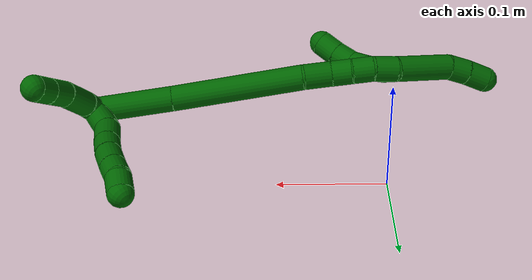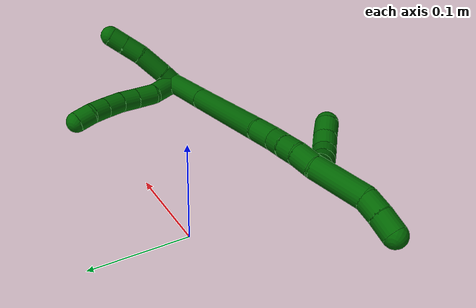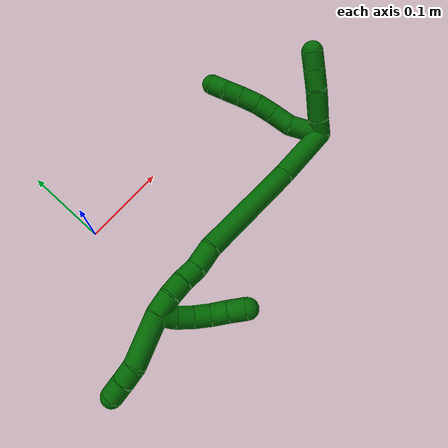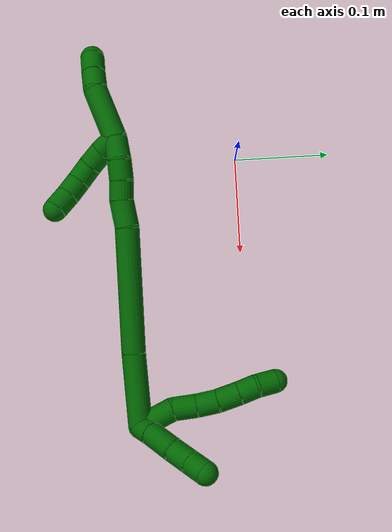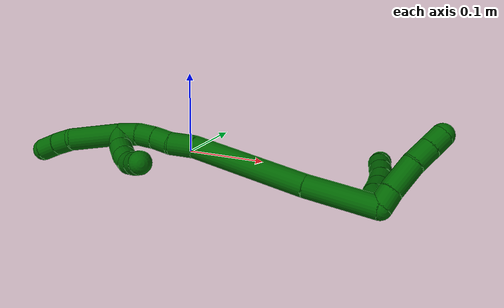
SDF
<sdf version="1.7">
 <world name="default">
  <model name="6">
   <static>0</static>
   <link name="6">
    <collision name="collision-cylinder-e_1_2_8">
     <pose>0.005248 -0.002999 0.018213 0.163201 0.276987 0.022798</pose>
     <geometry><cylinder><radius>0.0125</radius><length>0.038379</length></cylinder></geometry>
     <surface>
      <friction><ode><mu>1.16</mu><mu2>1.16</mu2><slip1>0</slip1><slip2>0</slip2></ode></friction>
      <contact><ode><kp>1e+06</kp><kd>1</kd><max_vel>0</max_vel><min_depth>0.001</min_depth></ode></contact>
     </surface>
    </collision>
    <visual name="visual-cylinder-e_1_2_8">
     <pose>0.005248 -0.002999 0.018213 0.163201 0.276987 0.022798</pose>
     <geometry><cylinder><radius>0.0125</radius><length>0.038379</length></cylinder></geometry>
     <material><ambient>0 0.392157 0.003922 1</ambient></material>
    </visual>
    <collision name="collision-cylinder-e_2_8_9">
     <pose>0.017736 -0.006997 0.046713 0.096802 0.611102 0.030556</pose>
     <geometry><cylinder><radius>0.0125</radius><length>0.025238</length></cylinder></geometry>
     <surface>
      <friction><ode><mu>1.16</mu><mu2>1.16</mu2><slip1>0</slip1><slip2>0</slip2></ode></friction>
      <contact><ode><kp>1e+06</kp><kd>1</kd><max_vel>0</max_vel><min_depth>0.001</min_depth></ode></contact>
     </surface>
    </collision>
    <visual name="visual-cylinder-e_2_8_9">
     <pose>0.017736 -0.006997 0.046713 0.096802 0.611102 0.030556</pose>
     <geometry><cylinder><radius>0.0125</radius><length>0.025238</length></cylinder></geometry>
     <material><ambient>0 0.392157 0.003922 1</ambient></material>
    </visual>
    <collision name="collision-cylinder-e_3_9_10">
     <pose>0.030881 -0.009789 0.066398 0.18853 0.55293 0.053638</pose>
     <geometry><cylinder><radius>0.0125</radius><length>0.022487</length></cylinder></geometry>
     <surface>
      <friction><ode><mu>1.16</mu><mu2>1.16</mu2><slip1>0</slip1><slip2>0</slip2></ode></friction>
      <contact><ode><kp>1e+06</kp><kd>1</kd><max_vel>0</max_vel><min_depth>0.001</min_depth></ode></contact>
     </surface>
    </collision>
    <visual name="visual-cylinder-e_3_9_10">
     <pose>0.030881 -0.009789 0.066398 0.18853 0.55293 0.053638</pose>
     <geometry><cylinder><radius>0.0125</radius><length>0.022487</length></cylinder></geometry>
     <material><ambient>0 0.392157 0.003922 1</ambient></material>
    </visual>
    <collision name="collision-cylinder-e_4_10_11">
     <pose>0.041611 -0.013437 0.08634 0.174178 0.423449 0.037529</pose>
     <geometry><cylinder><radius>0.0125</radius><length>0.023484</length></cylinder></geometry>
     <surface>
      <friction><ode><mu>1.16</mu><mu2>1.16</mu2><slip1>0</slip1><slip2>0</slip2></ode></friction>
      <contact><ode><kp>1e+06</kp><kd>1</kd><max_vel>0</max_vel><min_depth>0.001</min_depth></ode></contact>
     </surface>
    </collision>
    <visual name="visual-cylinder-e_4_10_11">
     <pose>0.041611 -0.013437 0.08634 0.174178 0.423449 0.037529</pose>
     <geometry><cylinder><radius>0.0125</radius><length>0.023484</length></cylinder></geometry>
     <material><ambient>0 0.392157 0.003922 1</ambient></material>
    </visual>
    <collision name="collision-cylinder-e_5_11_12">
     <pose>0.050158 -0.016963 0.106098 0.17927 0.37835 0.034413</pose>
     <geometry><cylinder><radius>0.0125</radius><length>0.020156</length></cylinder></geometry>
     <surface>
      <friction><ode><mu>1.16</mu><mu2>1.16</mu2><slip1>0</slip1><slip2>0</slip2></ode></friction>
      <contact><ode><kp>1e+06</kp><kd>1</kd><max_vel>0</max_vel><min_depth>0.001</min_depth></ode></contact>
     </surface>
    </collision>
    <visual name="visual-cylinder-e_5_11_12">
     <pose>0.050158 -0.016963 0.106098 0.17927 0.37835 0.034413</pose>
     <geometry><cylinder><radius>0.0125</radius><length>0.020156</length></cylinder></geometry>
     <material><ambient>0 0.392157 0.003922 1</ambient></material>
    </visual>
    <collision name="collision-cylinder-e_6_12_6">
     <pose>0.058195 -0.017599 0.124417 -0.113076 0.440066 -0.025316</pose>
     <geometry><cylinder><radius>0.0125</radius><length>0.020255</length></cylinder></geometry>
     <surface>
      <friction><ode><mu>1.16</mu><mu2>1.16</mu2><slip1>0</slip1><slip2>0</slip2></ode></friction>
      <contact><ode><kp>1e+06</kp><kd>1</kd><max_vel>0</max_vel><min_depth>0.001</min_depth></ode></contact>
     </surface>
    </collision>
    <visual name="visual-cylinder-e_6_12_6">
     <pose>0.058195 -0.017599 0.124417 -0.113076 0.440066 -0.025316</pose>
     <geometry><cylinder><radius>0.0125</radius><length>0.020255</length></cylinder></geometry>
     <material><ambient>0 0.392157 0.003922 1</ambient></material>
    </visual>
    <collision name="collision-cylinder-e_1_2_13">
     <pose>0.008324 -0.005817 0.001057 1.39098 0.953226 0.813751</pose>
     <geometry><cylinder><radius>0.0125</radius><length>0.020419</length></cylinder></geometry>
     <surface>
      <friction><ode><mu>1.16</mu><mu2>1.16</mu2><slip1>0</slip1><slip2>0</slip2></ode></friction>
      <contact><ode><kp>1e+06</kp><kd>1</kd><max_vel>0</max_vel><min_depth>0.001</min_depth></ode></contact>
     </surface>
    </collision>
    <visual name="visual-cylinder-e_1_2_13">
     <pose>0.008324 -0.005817 0.001057 1.39098 0.953226 0.813751</pose>
     <geometry><cylinder><radius>0.0125</radius><length>0.020419</length></cylinder></geometry>
     <material><ambient>0 0.392157 0.003922 1</ambient></material>
    </visual>
    <collision name="collision-cylinder-e_2_13_14">
     <pose>0.032194 -0.020464 0.003433 1.42257 1.04949 0.925466</pose>
     <geometry><cylinder><radius>0.0125</radius><length>0.035856</length></cylinder></geometry>
     <surface>
      <friction><ode><mu>1.16</mu><mu2>1.16</mu2><slip1>0</slip1><slip2>0</slip2></ode></friction>
      <contact><ode><kp>1e+06</kp><kd>1</kd><max_vel>0</max_vel><min_depth>0.001</min_depth></ode></contact>
     </surface>
    </collision>
    <visual name="visual-cylinder-e_2_13_14">
     <pose>0.032194 -0.020464 0.003433 1.42257 1.04949 0.925466</pose>
     <geometry><cylinder><radius>0.0125</radius><length>0.035856</length></cylinder></geometry>
     <material><ambient>0 0.392157 0.003922 1</ambient></material>
    </visual>
    <collision name="collision-cylinder-e_3_14_15">
     <pose>0.058692 -0.033555 0.006311 1.21989 1.17805 0.873673</pose>
     <geometry><cylinder><radius>0.0125</radius><length>0.023707</length></cylinder></geometry>
     <surface>
      <friction><ode><mu>1.16</mu><mu2>1.16</mu2><slip1>0</slip1><slip2>0</slip2></ode></friction>
      <contact><ode><kp>1e+06</kp><kd>1</kd><max_vel>0</max_vel><min_depth>0.001</min_depth></ode></contact>
     </surface>
    </collision>
    <visual name="visual-cylinder-e_3_14_15">
     <pose>0.058692 -0.033555 0.006311 1.21989 1.17805 0.873673</pose>
     <geometry><cylinder><radius>0.0125</radius><length>0.023707</length></cylinder></geometry>
     <material><ambient>0 0.392157 0.003922 1</ambient></material>
    </visual>
    <collision name="collision-cylinder-e_4_15_5">
     <pose>0.078878 -0.041442 0.009186 1.22299 1.17503 0.873698</pose>
     <geometry><cylinder><radius>0.0125</radius><length>0.020017</length></cylinder></geometry>
     <surface>
      <friction><ode><mu>1.16</mu><mu2>1.16</mu2><slip1>0</slip1><slip2>0</slip2></ode></friction>
      <contact><ode><kp>1e+06</kp><kd>1</kd><max_vel>0</max_vel><min_depth>0.001</min_depth></ode></contact>
     </surface>
    </collision>
    <visual name="visual-cylinder-e_4_15_5">
     <pose>0.078878 -0.041442 0.009186 1.22299 1.17503 0.873698</pose>
     <geometry><cylinder><radius>0.0125</radius><length>0.020017</length></cylinder></geometry>
     <material><ambient>0 0.392157 0.003922 1</ambient></material>
    </visual>
    <collision name="collision-cylinder-e_1_2_16">
     <pose>-0.027436 -0.018551 0.020519 0.735071 -0.781295 -0.314502</pose>
     <geometry><cylinder><radius>0.0125</radius><length>0.07792</length></cylinder></geometry>
     <surface>
      <friction><ode><mu>1.16</mu><mu2>1.16</mu2><slip1>0</slip1><slip2>0</slip2></ode></friction>
      <contact><ode><kp>1e+06</kp><kd>1</kd><max_vel>0</max_vel><min_depth>0.001</min_depth></ode></contact>
     </surface>
    </collision>
    <visual name="visual-cylinder-e_1_2_16">
     <pose>-0.027436 -0.018551 0.020519 0.735071 -0.781295 -0.314502</pose>
     <geometry><cylinder><radius>0.0125</radius><length>0.07792</length></cylinder></geometry>
     <material><ambient>0 0.392157 0.003922 1</ambient></material>
    </visual>
    <collision name="collision-cylinder-e_2_16_17">
     <pose>-0.097893 -0.070349 0.076444 0.753963 -0.724906 -0.298042</pose>
     <geometry><cylinder><radius>0.0125</radius><length>0.129766</length></cylinder></geometry>
     <surface>
      <friction><ode><mu>1.16</mu><mu2>1.16</mu2><slip1>0</slip1><slip2>0</slip2></ode></friction>
      <contact><ode><kp>1e+06</kp><kd>1</kd><max_vel>0</max_vel><min_depth>0.001</min_depth></ode></contact>
     </surface>
    </collision>
    <visual name="visual-cylinder-e_2_16_17">
     <pose>-0.097893 -0.070349 0.076444 0.753963 -0.724906 -0.298042</pose>
     <geometry><cylinder><radius>0.0125</radius><length>0.129766</length></cylinder></geometry>
     <material><ambient>0 0.392157 0.003922 1</ambient></material>
    </visual>
    <collision name="collision-cylinder-e_3_17_18">
     <pose>-0.152132 -0.108944 0.118266 0.69481 -0.930738 -0.359721</pose>
     <geometry><cylinder><radius>0.0125</radius><length>0.027973</length></cylinder></geometry>
     <surface>
      <friction><ode><mu>1.16</mu><mu2>1.16</mu2><slip1>0</slip1><slip2>0</slip2></ode></friction>
      <contact><ode><kp>1e+06</kp><kd>1</kd><max_vel>0</max_vel><min_depth>0.001</min_depth></ode></contact>
     </surface>
    </collision>
    <visual name="visual-cylinder-e_3_17_18">
     <pose>-0.152132 -0.108944 0.118266 0.69481 -0.930738 -0.359721</pose>
     <geometry><cylinder><radius>0.0125</radius><length>0.027973</length></cylinder></geometry>
     <material><ambient>0 0.392157 0.003922 1</ambient></material>
    </visual>
    <collision name="collision-cylinder-e_4_18_19">
     <pose>-0.169934 -0.11939 0.130724 0.700885 -0.694535 -0.263068</pose>
     <geometry><cylinder><radius>0.0125</radius><length>0.020575</length></cylinder></geometry>
     <surface>
      <friction><ode><mu>1.16</mu><mu2>1.16</mu2><slip1>0</slip1><slip2>0</slip2></ode></friction>
      <contact><ode><kp>1e+06</kp><kd>1</kd><max_vel>0</max_vel><min_depth>0.001</min_depth></ode></contact>
     </surface>
    </collision>
    <visual name="visual-cylinder-e_4_18_19">
     <pose>-0.169934 -0.11939 0.130724 0.700885 -0.694535 -0.263068</pose>
     <geometry><cylinder><radius>0.0125</radius><length>0.020575</length></cylinder></geometry>
     <material><ambient>0 0.392157 0.003922 1</ambient></material>
    </visual>
    <collision name="collision-cylinder-e_5_19_20">
     <pose>-0.18413 -0.128983 0.142179 0.693071 -0.824622 -0.313295</pose>
     <geometry><cylinder><radius>0.0125</radius><length>0.020731</length></cylinder></geometry>
     <surface>
      <friction><ode><mu>1.16</mu><mu2>1.16</mu2><slip1>0</slip1><slip2>0</slip2></ode></friction>
      <contact><ode><kp>1e+06</kp><kd>1</kd><max_vel>0</max_vel><min_depth>0.001</min_depth></ode></contact>
     </surface>
    </collision>
    <visual name="visual-cylinder-e_5_19_20">
     <pose>-0.18413 -0.128983 0.142179 0.693071 -0.824622 -0.313295</pose>
     <geometry><cylinder><radius>0.0125</radius><length>0.020731</length></cylinder></geometry>
     <material><ambient>0 0.392157 0.003922 1</ambient></material>
    </visual>
    <collision name="collision-cylinder-e_6_20_1">
     <pose>-0.201301 -0.136317 0.153355 0.457643 -0.979057 -0.246909</pose>
     <geometry><cylinder><radius>0.0125</radius><length>0.023035</length></cylinder></geometry>
     <surface>
      <friction><ode><mu>1.16</mu><mu2>1.16</mu2><slip1>0</slip1><slip2>0</slip2></ode></friction>
      <contact><ode><kp>1e+06</kp><kd>1</kd><max_vel>0</max_vel><min_depth>0.001</min_depth></ode></contact>
     </surface>
    </collision>
    <visual name="visual-cylinder-e_6_20_1">
     <pose>-0.201301 -0.136317 0.153355 0.457643 -0.979057 -0.246909</pose>
     <geometry><cylinder><radius>0.0125</radius><length>0.023035</length></cylinder></geometry>
     <material><ambient>0 0.392157 0.003922 1</ambient></material>
    </visual>
    <collision name="collision-cylinder-e_1_1_21">
     <pose>-0.237558 -0.144519 0.168864 0.503111 -1.17602 -0.339378</pose>
     <geometry><cylinder><radius>0.0125</radius><length>0.057845</length></cylinder></geometry>
     <surface>
      <friction><ode><mu>1.16</mu><mu2>1.16</mu2><slip1>0</slip1><slip2>0</slip2></ode></friction>
      <contact><ode><kp>1e+06</kp><kd>1</kd><max_vel>0</max_vel><min_depth>0.001</min_depth></ode></contact>
     </surface>
    </collision>
    <visual name="visual-cylinder-e_1_1_21">
     <pose>-0.237558 -0.144519 0.168864 0.503111 -1.17602 -0.339378</pose>
     <geometry><cylinder><radius>0.0125</radius><length>0.057845</length></cylinder></geometry>
     <material><ambient>0 0.392157 0.003922 1</ambient></material>
    </visual>
    <collision name="collision-cylinder-e_2_21_22">
     <pose>-0.27269 -0.149836 0.184383 -0.007958 -0.970434 0.004196</pose>
     <geometry><cylinder><radius>0.0125</radius><length>0.020443</length></cylinder></geometry>
     <surface>
      <friction><ode><mu>1.16</mu><mu2>1.16</mu2><slip1>0</slip1><slip2>0</slip2></ode></friction>
      <contact><ode><kp>1e+06</kp><kd>1</kd><max_vel>0</max_vel><min_depth>0.001</min_depth></ode></contact>
     </surface>
    </collision>
    <visual name="visual-cylinder-e_2_21_22">
     <pose>-0.27269 -0.149836 0.184383 -0.007958 -0.970434 0.004196</pose>
     <geometry><cylinder><radius>0.0125</radius><length>0.020443</length></cylinder></geometry>
     <material><ambient>0 0.392157 0.003922 1</ambient></material>
    </visual>
    <collision name="collision-cylinder-e_3_22_4">
     <pose>-0.289831 -0.148948 0.196587 -0.130303 -0.930672 0.065496</pose>
     <geometry><cylinder><radius>0.0125</radius><length>0.021712</length></cylinder></geometry>
     <surface>
      <friction><ode><mu>1.16</mu><mu2>1.16</mu2><slip1>0</slip1><slip2>0</slip2></ode></friction>
      <contact><ode><kp>1e+06</kp><kd>1</kd><max_vel>0</max_vel><min_depth>0.001</min_depth></ode></contact>
     </surface>
    </collision>
    <visual name="visual-cylinder-e_3_22_4">
     <pose>-0.289831 -0.148948 0.196587 -0.130303 -0.930672 0.065496</pose>
     <geometry><cylinder><radius>0.0125</radius><length>0.021712</length></cylinder></geometry>
     <material><ambient>0 0.392157 0.003922 1</ambient></material>
    </visual>
    <collision name="collision-cylinder-e_1_1_23">
     <pose>-0.213024 -0.133012 0.151531 -2.46096 -0.218123 0.599808</pose>
     <geometry><cylinder><radius>0.0125</radius><length>0.02</length></cylinder></geometry>
     <surface>
      <friction><ode><mu>1.16</mu><mu2>1.16</mu2><slip1>0</slip1><slip2>0</slip2></ode></friction>
      <contact><ode><kp>1e+06</kp><kd>1</kd><max_vel>0</max_vel><min_depth>0.001</min_depth></ode></contact>
     </surface>
    </collision>
    <visual name="visual-cylinder-e_1_1_23">
     <pose>-0.213024 -0.133012 0.151531 -2.46096 -0.218123 0.599808</pose>
     <geometry><cylinder><radius>0.0125</radius><length>0.02</length></cylinder></geometry>
     <material><ambient>0 0.392157 0.003922 1</ambient></material>
    </visual>
    <collision name="collision-cylinder-e_2_23_24">
     <pose>-0.215252 -0.12191 0.13526 -2.62274 -0.006378 0.024031</pose>
     <geometry><cylinder><radius>0.0125</radius><length>0.02</length></cylinder></geometry>
     <surface>
      <friction><ode><mu>1.16</mu><mu2>1.16</mu2><slip1>0</slip1><slip2>0</slip2></ode></friction>
      <contact><ode><kp>1e+06</kp><kd>1</kd><max_vel>0</max_vel><min_depth>0.001</min_depth></ode></contact>
     </surface>
    </collision>
    <visual name="visual-cylinder-e_2_23_24">
     <pose>-0.215252 -0.12191 0.13526 -2.62274 -0.006378 0.024031</pose>
     <geometry><cylinder><radius>0.0125</radius><length>0.02</length></cylinder></geometry>
     <material><ambient>0 0.392157 0.003922 1</ambient></material>
    </visual>
    <collision name="collision-cylinder-e_3_24_25">
     <pose>-0.214012 -0.11335 0.117338 -2.76987 0.130734 -0.670026</pose>
     <geometry><cylinder><radius>0.0125</radius><length>0.02</length></cylinder></geometry>
     <surface>
      <friction><ode><mu>1.16</mu><mu2>1.16</mu2><slip1>0</slip1><slip2>0</slip2></ode></friction>
      <contact><ode><kp>1e+06</kp><kd>1</kd><max_vel>0</max_vel><min_depth>0.001</min_depth></ode></contact>
     </surface>
    </collision>
    <visual name="visual-cylinder-e_3_24_25">
     <pose>-0.214012 -0.11335 0.117338 -2.76987 0.130734 -0.670026</pose>
     <geometry><cylinder><radius>0.0125</radius><length>0.02</length></cylinder></geometry>
     <material><ambient>0 0.392157 0.003922 1</ambient></material>
    </visual>
    <collision name="collision-cylinder-e_4_25_26">
     <pose>-0.210244 -0.109225 0.098424 -3.08758 0.249043 -2.71649</pose>
     <geometry><cylinder><radius>0.0125</radius><length>0.02</length></cylinder></geometry>
     <surface>
      <friction><ode><mu>1.16</mu><mu2>1.16</mu2><slip1>0</slip1><slip2>0</slip2></ode></friction>
      <contact><ode><kp>1e+06</kp><kd>1</kd><max_vel>0</max_vel><min_depth>0.001</min_depth></ode></contact>
     </surface>
    </collision>
    <visual name="visual-cylinder-e_4_25_26">
     <pose>-0.210244 -0.109225 0.098424 -3.08758 0.249043 -2.71649</pose>
     <geometry><cylinder><radius>0.0125</radius><length>0.02</length></cylinder></geometry>
     <material><ambient>0 0.392157 0.003922 1</ambient></material>
    </visual>
    <collision name="collision-cylinder-e_5_26_3">
     <pose>-0.205573 -0.109033 0.078998 3.10764 0.22246 2.83989</pose>
     <geometry><cylinder><radius>0.0125</radius><length>0.02</length></cylinder></geometry>
     <surface>
      <friction><ode><mu>1.16</mu><mu2>1.16</mu2><slip1>0</slip1><slip2>0</slip2></ode></friction>
      <contact><ode><kp>1e+06</kp><kd>1</kd><max_vel>0</max_vel><min_depth>0.001</min_depth></ode></contact>
     </surface>
    </collision>
    <visual name="visual-cylinder-e_5_26_3">
     <pose>-0.205573 -0.109033 0.078998 3.10764 0.22246 2.83989</pose>
     <geometry><cylinder><radius>0.0125</radius><length>0.02</length></cylinder></geometry>
     <material><ambient>0 0.392157 0.003922 1</ambient></material>
    </visual>
    <collision name="collision-sphere-3">
     <pose>-0.203366 -0.109364 0.06925 0 -0 0</pose>
     <geometry><sphere><radius>0.0125</radius></sphere></geometry>
     <surface>
      <friction><ode><mu>1.16</mu><mu2>1.16</mu2><slip1>0</slip1><slip2>0</slip2></ode></friction>
      <contact><ode><kp>1e+06</kp><kd>1</kd><max_vel>0</max_vel><min_depth>0.001</min_depth></ode></contact>
     </surface>
    </collision>
    <visual name="visual-sphere-3">
     <pose>-0.203366 -0.109364 0.06925 0 -0 0</pose>
     <geometry><sphere><radius>0.0125</radius></sphere></geometry>
     <material><ambient>0 0.392157 0.003922 1</ambient></material>
    </visual>
    <collision name="collision-sphere-26">
     <pose>-0.207779 -0.108702 0.088746 0 -0 0</pose>
     <geometry><sphere><radius>0.0125</radius></sphere></geometry>
     <surface>
      <friction><ode><mu>1.16</mu><mu2>1.16</mu2><slip1>0</slip1><slip2>0</slip2></ode></friction>
      <contact><ode><kp>1e+06</kp><kd>1</kd><max_vel>0</max_vel><min_depth>0.001</min_depth></ode></contact>
     </surface>
    </collision>
    <visual name="visual-sphere-26">
     <pose>-0.207779 -0.108702 0.088746 0 -0 0</pose>
     <geometry><sphere><radius>0.0125</radius></sphere></geometry>
     <material><ambient>0 0.392157 0.003922 1</ambient></material>
    </visual>
    <collision name="collision-sphere-25">
     <pose>-0.212708 -0.109749 0.108101 0 -0 0</pose>
     <geometry><sphere><radius>0.0125</radius></sphere></geometry>
     <surface>
      <friction><ode><mu>1.16</mu><mu2>1.16</mu2><slip1>0</slip1><slip2>0</slip2></ode></friction>
      <contact><ode><kp>1e+06</kp><kd>1</kd><max_vel>0</max_vel><min_depth>0.001</min_depth></ode></contact>
     </surface>
    </collision>
    <visual name="visual-sphere-25">
     <pose>-0.212708 -0.109749 0.108101 0 -0 0</pose>
     <geometry><sphere><radius>0.0125</radius></sphere></geometry>
     <material><ambient>0 0.392157 0.003922 1</ambient></material>
    </visual>
    <collision name="collision-sphere-24">
     <pose>-0.215316 -0.116951 0.126576 0 -0 0</pose>
     <geometry><sphere><radius>0.0125</radius></sphere></geometry>
     <surface>
      <friction><ode><mu>1.16</mu><mu2>1.16</mu2><slip1>0</slip1><slip2>0</slip2></ode></friction>
      <contact><ode><kp>1e+06</kp><kd>1</kd><max_vel>0</max_vel><min_depth>0.001</min_depth></ode></contact>
     </surface>
    </collision>
    <visual name="visual-sphere-24">
     <pose>-0.215316 -0.116951 0.126576 0 -0 0</pose>
     <geometry><sphere><radius>0.0125</radius></sphere></geometry>
     <material><ambient>0 0.392157 0.003922 1</ambient></material>
    </visual>
    <collision name="collision-sphere-23">
     <pose>-0.215188 -0.126868 0.143943 0 -0 0</pose>
     <geometry><sphere><radius>0.0125</radius></sphere></geometry>
     <surface>
      <friction><ode><mu>1.16</mu><mu2>1.16</mu2><slip1>0</slip1><slip2>0</slip2></ode></friction>
      <contact><ode><kp>1e+06</kp><kd>1</kd><max_vel>0</max_vel><min_depth>0.001</min_depth></ode></contact>
     </surface>
    </collision>
    <visual name="visual-sphere-23">
     <pose>-0.215188 -0.126868 0.143943 0 -0 0</pose>
     <geometry><sphere><radius>0.0125</radius></sphere></geometry>
     <material><ambient>0 0.392157 0.003922 1</ambient></material>
    </visual>
    <collision name="collision-sphere-4">
     <pose>-0.298538 -0.148105 0.203016 0 -0 0</pose>
     <geometry><sphere><radius>0.0125</radius></sphere></geometry>
     <surface>
      <friction><ode><mu>1.16</mu><mu2>1.16</mu2><slip1>0</slip1><slip2>0</slip2></ode></friction>
      <contact><ode><kp>1e+06</kp><kd>1</kd><max_vel>0</max_vel><min_depth>0.001</min_depth></ode></contact>
     </surface>
    </collision>
    <visual name="visual-sphere-4">
     <pose>-0.298538 -0.148105 0.203016 0 -0 0</pose>
     <geometry><sphere><radius>0.0125</radius></sphere></geometry>
     <material><ambient>0 0.392157 0.003922 1</ambient></material>
    </visual>
    <collision name="collision-sphere-22">
     <pose>-0.281124 -0.149791 0.190158 0 -0 0</pose>
     <geometry><sphere><radius>0.0125</radius></sphere></geometry>
     <surface>
      <friction><ode><mu>1.16</mu><mu2>1.16</mu2><slip1>0</slip1><slip2>0</slip2></ode></friction>
      <contact><ode><kp>1e+06</kp><kd>1</kd><max_vel>0</max_vel><min_depth>0.001</min_depth></ode></contact>
     </surface>
    </collision>
    <visual name="visual-sphere-22">
     <pose>-0.281124 -0.149791 0.190158 0 -0 0</pose>
     <geometry><sphere><radius>0.0125</radius></sphere></geometry>
     <material><ambient>0 0.392157 0.003922 1</ambient></material>
    </visual>
    <collision name="collision-sphere-21">
     <pose>-0.264256 -0.149882 0.178609 0 -0 0</pose>
     <geometry><sphere><radius>0.0125</radius></sphere></geometry>
     <surface>
      <friction><ode><mu>1.16</mu><mu2>1.16</mu2><slip1>0</slip1><slip2>0</slip2></ode></friction>
      <contact><ode><kp>1e+06</kp><kd>1</kd><max_vel>0</max_vel><min_depth>0.001</min_depth></ode></contact>
     </surface>
    </collision>
    <visual name="visual-sphere-21">
     <pose>-0.264256 -0.149882 0.178609 0 -0 0</pose>
     <geometry><sphere><radius>0.0125</radius></sphere></geometry>
     <material><ambient>0 0.392157 0.003922 1</ambient></material>
    </visual>
    <collision name="collision-sphere-1">
     <pose>-0.21086 -0.139156 0.159119 0 -0 0</pose>
     <geometry><sphere><radius>0.0125</radius></sphere></geometry>
     <surface>
      <friction><ode><mu>1.16</mu><mu2>1.16</mu2><slip1>0</slip1><slip2>0</slip2></ode></friction>
      <contact><ode><kp>1e+06</kp><kd>1</kd><max_vel>0</max_vel><min_depth>0.001</min_depth></ode></contact>
     </surface>
    </collision>
    <visual name="visual-sphere-1">
     <pose>-0.21086 -0.139156 0.159119 0 -0 0</pose>
     <geometry><sphere><radius>0.0125</radius></sphere></geometry>
     <material><ambient>0 0.392157 0.003922 1</ambient></material>
    </visual>
    <collision name="collision-sphere-12">
     <pose>0.053881 -0.018632 0.115313 0 -0 0</pose>
     <geometry><sphere><radius>0.0125</radius></sphere></geometry>
     <surface>
      <friction><ode><mu>1.16</mu><mu2>1.16</mu2><slip1>0</slip1><slip2>0</slip2></ode></friction>
      <contact><ode><kp>1e+06</kp><kd>1</kd><max_vel>0</max_vel><min_depth>0.001</min_depth></ode></contact>
     </surface>
    </collision>
    <visual name="visual-sphere-12">
     <pose>0.053881 -0.018632 0.115313 0 -0 0</pose>
     <geometry><sphere><radius>0.0125</radius></sphere></geometry>
     <material><ambient>0 0.392157 0.003922 1</ambient></material>
    </visual>
    <collision name="collision-sphere-11">
     <pose>0.046436 -0.015293 0.096883 0 -0 0</pose>
     <geometry><sphere><radius>0.0125</radius></sphere></geometry>
     <surface>
      <friction><ode><mu>1.16</mu><mu2>1.16</mu2><slip1>0</slip1><slip2>0</slip2></ode></friction>
      <contact><ode><kp>1e+06</kp><kd>1</kd><max_vel>0</max_vel><min_depth>0.001</min_depth></ode></contact>
     </surface>
    </collision>
    <visual name="visual-sphere-11">
     <pose>0.046436 -0.015293 0.096883 0 -0 0</pose>
     <geometry><sphere><radius>0.0125</radius></sphere></geometry>
     <material><ambient>0 0.392157 0.003922 1</ambient></material>
    </visual>
    <collision name="collision-sphere-10">
     <pose>0.036786 -0.011582 0.075797 0 -0 0</pose>
     <geometry><sphere><radius>0.0125</radius></sphere></geometry>
     <surface>
      <friction><ode><mu>1.16</mu><mu2>1.16</mu2><slip1>0</slip1><slip2>0</slip2></ode></friction>
      <contact><ode><kp>1e+06</kp><kd>1</kd><max_vel>0</max_vel><min_depth>0.001</min_depth></ode></contact>
     </surface>
    </collision>
    <visual name="visual-sphere-10">
     <pose>0.036786 -0.011582 0.075797 0 -0 0</pose>
     <geometry><sphere><radius>0.0125</radius></sphere></geometry>
     <material><ambient>0 0.392157 0.003922 1</ambient></material>
    </visual>
    <collision name="collision-sphere-9">
     <pose>0.024976 -0.007996 0.057 0 -0 0</pose>
     <geometry><sphere><radius>0.0125</radius></sphere></geometry>
     <surface>
      <friction><ode><mu>1.16</mu><mu2>1.16</mu2><slip1>0</slip1><slip2>0</slip2></ode></friction>
      <contact><ode><kp>1e+06</kp><kd>1</kd><max_vel>0</max_vel><min_depth>0.001</min_depth></ode></contact>
     </surface>
    </collision>
    <visual name="visual-sphere-9">
     <pose>0.024976 -0.007996 0.057 0 -0 0</pose>
     <geometry><sphere><radius>0.0125</radius></sphere></geometry>
     <material><ambient>0 0.392157 0.003922 1</ambient></material>
    </visual>
    <collision name="collision-sphere-2">
     <geometry><sphere><radius>0.0125</radius></sphere></geometry>
     <surface>
      <friction><ode><mu>1.16</mu><mu2>1.16</mu2><slip1>0</slip1><slip2>0</slip2></ode></friction>
      <contact><ode><kp>1e+06</kp><kd>1</kd><max_vel>0</max_vel><min_depth>0.001</min_depth></ode></contact>
     </surface>
    </collision>
    <visual name="visual-sphere-2">
     <geometry><sphere><radius>0.0125</radius></sphere></geometry>
     <material><ambient>0 0.392157 0.003922 1</ambient></material>
    </visual>
    <collision name="collision-sphere-19">
     <pose>-0.176519 -0.124487 0.136766 0 -0 0</pose>
     <geometry><sphere><radius>0.0125</radius></sphere></geometry>
     <surface>
      <friction><ode><mu>1.16</mu><mu2>1.16</mu2><slip1>0</slip1><slip2>0</slip2></ode></friction>
      <contact><ode><kp>1e+06</kp><kd>1</kd><max_vel>0</max_vel><min_depth>0.001</min_depth></ode></contact>
     </surface>
    </collision>
    <visual name="visual-sphere-19">
     <pose>-0.176519 -0.124487 0.136766 0 -0 0</pose>
     <geometry><sphere><radius>0.0125</radius></sphere></geometry>
     <material><ambient>0 0.392157 0.003922 1</ambient></material>
    </visual>
    <collision name="collision-sphere-8">
     <pose>0.010495 -0.005998 0.036426 0 -0 0</pose>
     <geometry><sphere><radius>0.0125</radius></sphere></geometry>
     <surface>
      <friction><ode><mu>1.16</mu><mu2>1.16</mu2><slip1>0</slip1><slip2>0</slip2></ode></friction>
      <contact><ode><kp>1e+06</kp><kd>1</kd><max_vel>0</max_vel><min_depth>0.001</min_depth></ode></contact>
     </surface>
    </collision>
    <visual name="visual-sphere-8">
     <pose>0.010495 -0.005998 0.036426 0 -0 0</pose>
     <geometry><sphere><radius>0.0125</radius></sphere></geometry>
     <material><ambient>0 0.392157 0.003922 1</ambient></material>
    </visual>
    <collision name="collision-sphere-6">
     <pose>0.06251 -0.016565 0.133521 0 -0 0</pose>
     <geometry><sphere><radius>0.0125</radius></sphere></geometry>
     <surface>
      <friction><ode><mu>1.16</mu><mu2>1.16</mu2><slip1>0</slip1><slip2>0</slip2></ode></friction>
      <contact><ode><kp>1e+06</kp><kd>1</kd><max_vel>0</max_vel><min_depth>0.001</min_depth></ode></contact>
     </surface>
    </collision>
    <visual name="visual-sphere-6">
     <pose>0.06251 -0.016565 0.133521 0 -0 0</pose>
     <geometry><sphere><radius>0.0125</radius></sphere></geometry>
     <material><ambient>0 0.392157 0.003922 1</ambient></material>
    </visual>
    <collision name="collision-sphere-13">
     <pose>0.016648 -0.011633 0.002115 0 -0 0</pose>
     <geometry><sphere><radius>0.0125</radius></sphere></geometry>
     <surface>
      <friction><ode><mu>1.16</mu><mu2>1.16</mu2><slip1>0</slip1><slip2>0</slip2></ode></friction>
      <contact><ode><kp>1e+06</kp><kd>1</kd><max_vel>0</max_vel><min_depth>0.001</min_depth></ode></contact>
     </surface>
    </collision>
    <visual name="visual-sphere-13">
     <pose>0.016648 -0.011633 0.002115 0 -0 0</pose>
     <geometry><sphere><radius>0.0125</radius></sphere></geometry>
     <material><ambient>0 0.392157 0.003922 1</ambient></material>
    </visual>
    <collision name="collision-sphere-14">
     <pose>0.047741 -0.029295 0.004752 0 -0 0</pose>
     <geometry><sphere><radius>0.0125</radius></sphere></geometry>
     <surface>
      <friction><ode><mu>1.16</mu><mu2>1.16</mu2><slip1>0</slip1><slip2>0</slip2></ode></friction>
      <contact><ode><kp>1e+06</kp><kd>1</kd><max_vel>0</max_vel><min_depth>0.001</min_depth></ode></contact>
     </surface>
    </collision>
    <visual name="visual-sphere-14">
     <pose>0.047741 -0.029295 0.004752 0 -0 0</pose>
     <geometry><sphere><radius>0.0125</radius></sphere></geometry>
     <material><ambient>0 0.392157 0.003922 1</ambient></material>
    </visual>
    <collision name="collision-sphere-15">
     <pose>0.069643 -0.037815 0.007871 0 -0 0</pose>
     <geometry><sphere><radius>0.0125</radius></sphere></geometry>
     <surface>
      <friction><ode><mu>1.16</mu><mu2>1.16</mu2><slip1>0</slip1><slip2>0</slip2></ode></friction>
      <contact><ode><kp>1e+06</kp><kd>1</kd><max_vel>0</max_vel><min_depth>0.001</min_depth></ode></contact>
     </surface>
    </collision>
    <visual name="visual-sphere-15">
     <pose>0.069643 -0.037815 0.007871 0 -0 0</pose>
     <geometry><sphere><radius>0.0125</radius></sphere></geometry>
     <material><ambient>0 0.392157 0.003922 1</ambient></material>
    </visual>
    <collision name="collision-sphere-5">
     <pose>0.088113 -0.04507 0.010501 0 -0 0</pose>
     <geometry><sphere><radius>0.0125</radius></sphere></geometry>
     <surface>
      <friction><ode><mu>1.16</mu><mu2>1.16</mu2><slip1>0</slip1><slip2>0</slip2></ode></friction>
      <contact><ode><kp>1e+06</kp><kd>1</kd><max_vel>0</max_vel><min_depth>0.001</min_depth></ode></contact>
     </surface>
    </collision>
    <visual name="visual-sphere-5">
     <pose>0.088113 -0.04507 0.010501 0 -0 0</pose>
     <geometry><sphere><radius>0.0125</radius></sphere></geometry>
     <material><ambient>0 0.392157 0.003922 1</ambient></material>
    </visual>
    <collision name="collision-sphere-16">
     <pose>-0.054871 -0.037102 0.041038 0 -0 0</pose>
     <geometry><sphere><radius>0.0125</radius></sphere></geometry>
     <surface>
      <friction><ode><mu>1.16</mu><mu2>1.16</mu2><slip1>0</slip1><slip2>0</slip2></ode></friction>
      <contact><ode><kp>1e+06</kp><kd>1</kd><max_vel>0</max_vel><min_depth>0.001</min_depth></ode></contact>
     </surface>
    </collision>
    <visual name="visual-sphere-16">
     <pose>-0.054871 -0.037102 0.041038 0 -0 0</pose>
     <geometry><sphere><radius>0.0125</radius></sphere></geometry>
     <material><ambient>0 0.392157 0.003922 1</ambient></material>
    </visual>
    <collision name="collision-sphere-17">
     <pose>-0.140914 -0.103596 0.11185 0 -0 0</pose>
     <geometry><sphere><radius>0.0125</radius></sphere></geometry>
     <surface>
      <friction><ode><mu>1.16</mu><mu2>1.16</mu2><slip1>0</slip1><slip2>0</slip2></ode></friction>
      <contact><ode><kp>1e+06</kp><kd>1</kd><max_vel>0</max_vel><min_depth>0.001</min_depth></ode></contact>
     </surface>
    </collision>
    <visual name="visual-sphere-17">
     <pose>-0.140914 -0.103596 0.11185 0 -0 0</pose>
     <geometry><sphere><radius>0.0125</radius></sphere></geometry>
     <material><ambient>0 0.392157 0.003922 1</ambient></material>
    </visual>
    <collision name="collision-sphere-18">
     <pose>-0.16335 -0.114292 0.124683 0 -0 0</pose>
     <geometry><sphere><radius>0.0125</radius></sphere></geometry>
     <surface>
      <friction><ode><mu>1.16</mu><mu2>1.16</mu2><slip1>0</slip1><slip2>0</slip2></ode></friction>
      <contact><ode><kp>1e+06</kp><kd>1</kd><max_vel>0</max_vel><min_depth>0.001</min_depth></ode></contact>
     </surface>
    </collision>
    <visual name="visual-sphere-18">
     <pose>-0.16335 -0.114292 0.124683 0 -0 0</pose>
     <geometry><sphere><radius>0.0125</radius></sphere></geometry>
     <material><ambient>0 0.392157 0.003922 1</ambient></material>
    </visual>
    <collision name="collision-sphere-20">
     <pose>-0.191741 -0.133479 0.147592 0 -0 0</pose>
     <geometry><sphere><radius>0.0125</radius></sphere></geometry>
     <surface>
      <friction><ode><mu>1.16</mu><mu2>1.16</mu2><slip1>0</slip1><slip2>0</slip2></ode></friction>
      <contact><ode><kp>1e+06</kp><kd>1</kd><max_vel>0</max_vel><min_depth>0.001</min_depth></ode></contact>
     </surface>
    </collision>
    <visual name="visual-sphere-20">
     <pose>-0.191741 -0.133479 0.147592 0 -0 0</pose>
     <geometry><sphere><radius>0.0125</radius></sphere></geometry>
     <material><ambient>0 0.392157 0.003922 1</ambient></material>
    </visual>
    <inertial>
     <pose>-0.092017 -0.069711 0.085292 0 -0 0</pose>
     <mass>0.75</mass>
     <inertia>
      <ixx>0.000133</ixx>
      <ixy>0</ixy>
      <ixz>0</ixz>
      <iyy>0.000178</iyy>
      <iyz>0</iyz>
      <izz>0.000311</izz>
     </inertia>
    </inertial>
   </link>
   <pose>0.276094 -0.11558 0.011845 -1.81888 -0.258246 0.716005</pose>
  </model>
 </world>
</sdf>
